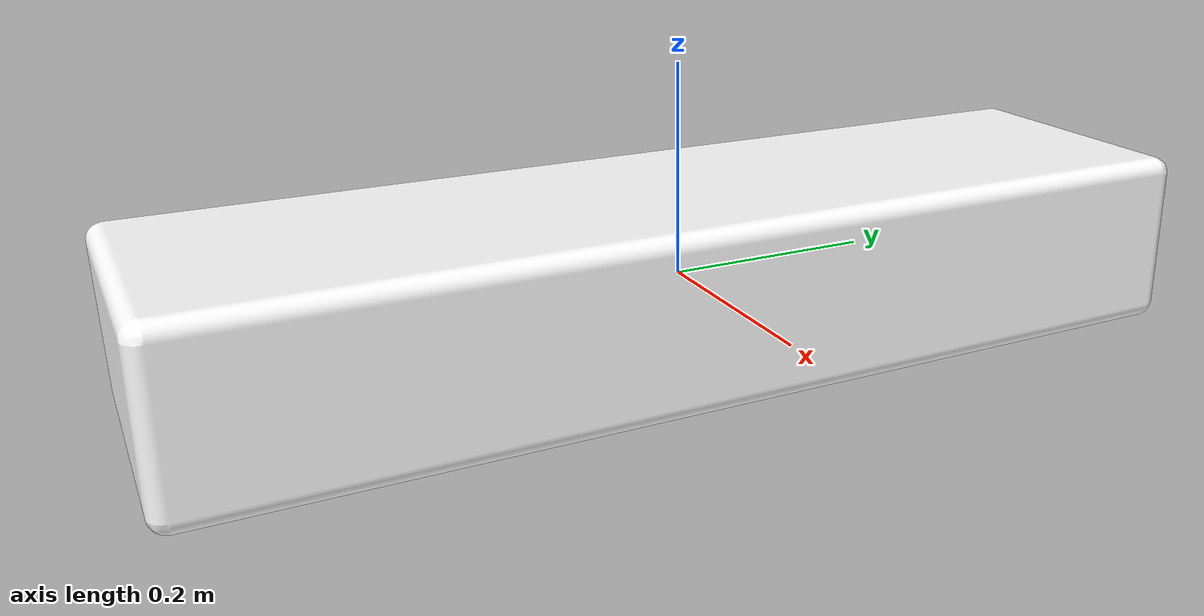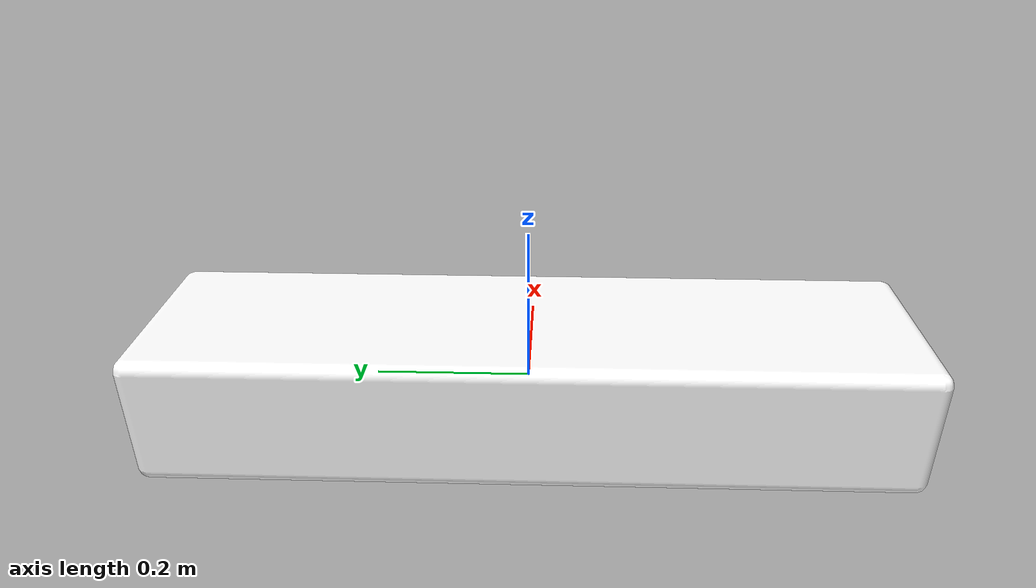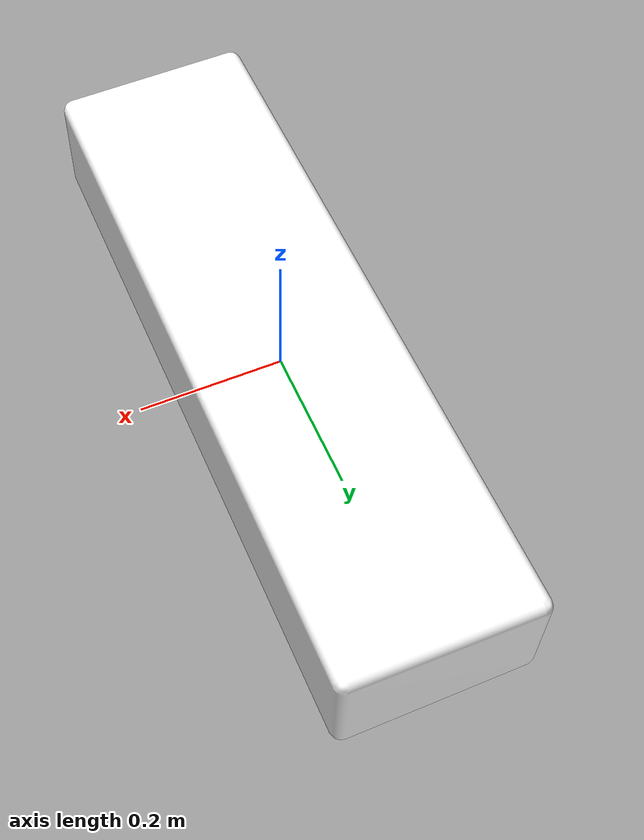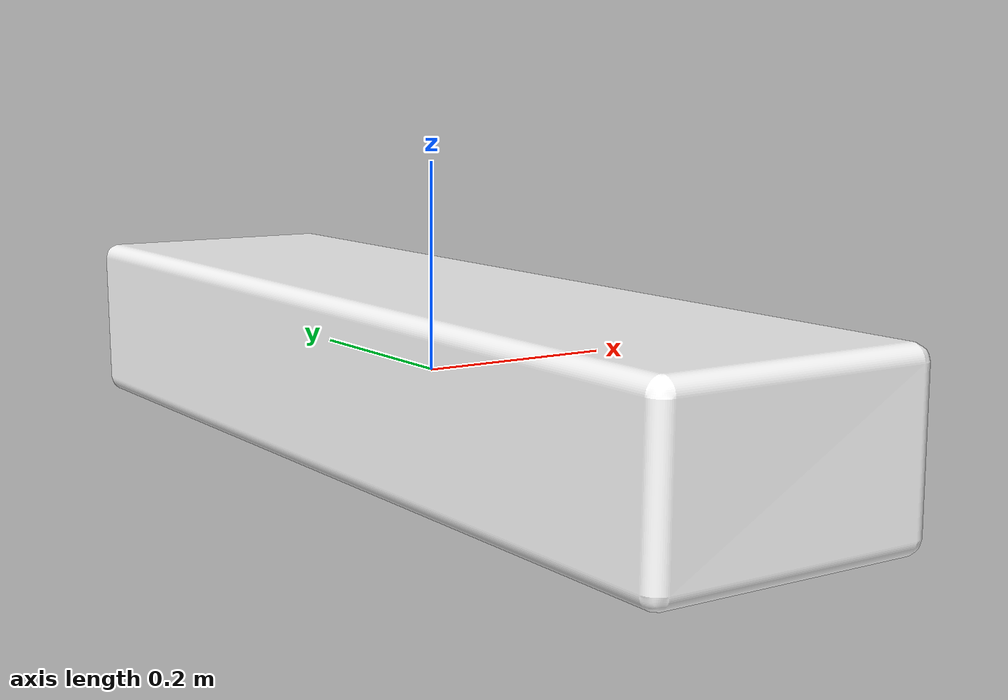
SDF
<sdf version="1.6">
  <model name="soilbed_240492">
    <static>true</static>
    <link name="link">
      <collision name="collision">
        <geometry>
          <box>
            <size>1 1 1</size>
          </box>
        </geometry>
      </collision>
      <visual name="SoilBed">
        <geometry>
          <mesh>
            <uri>model://soilbed_240492/meshes/SoilBed.dae</uri>
            <scale>0.08 0.08 0.08</scale>
          </mesh>
        </geometry>
        <material>
          <diffuse>1 1 1</diffuse>
        </material>
      </visual>
    </link>

  </model>
</sdf>
